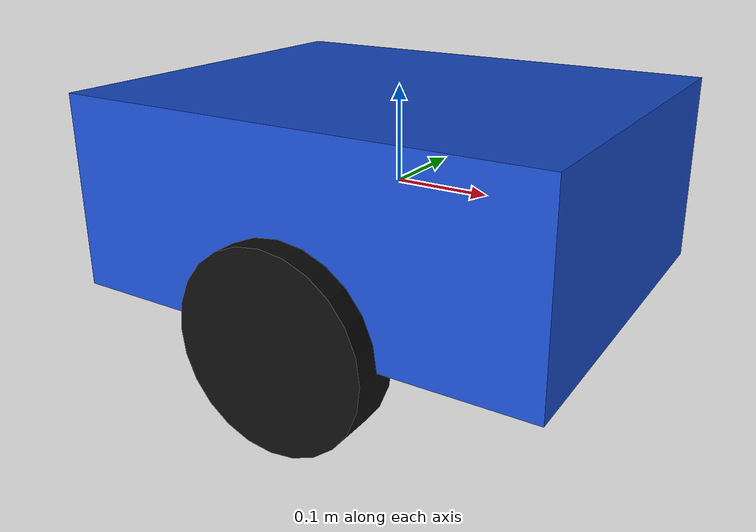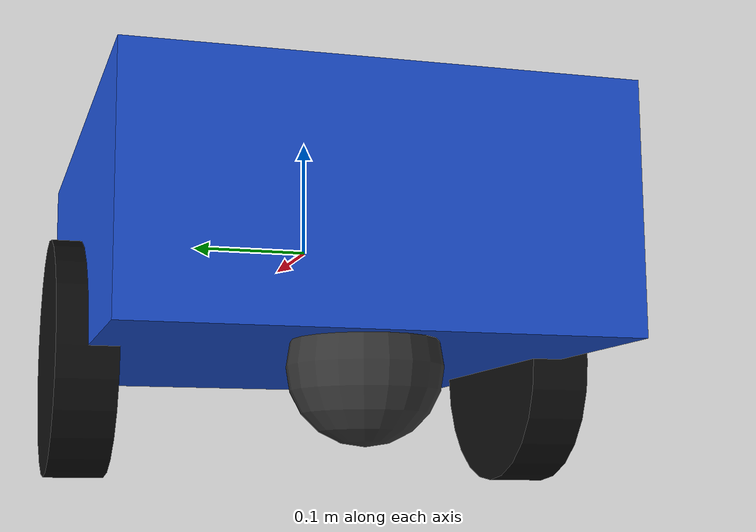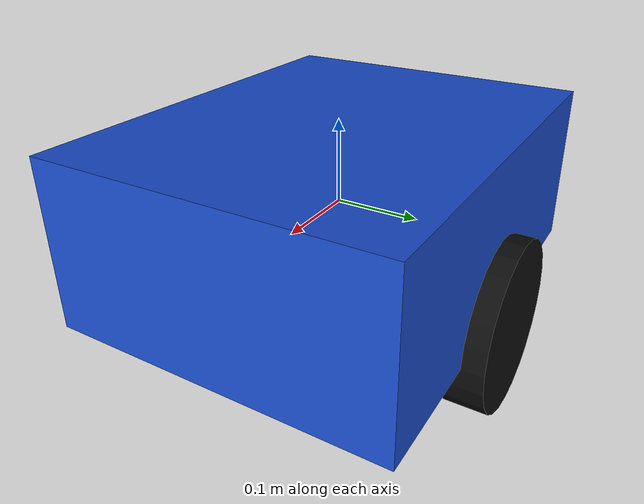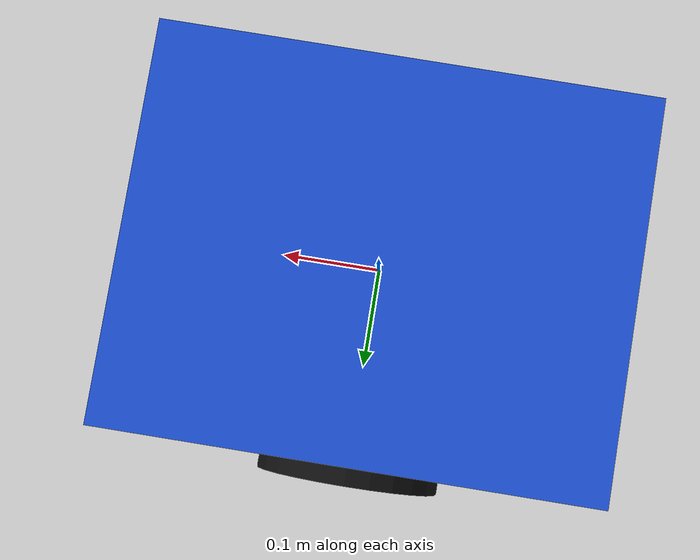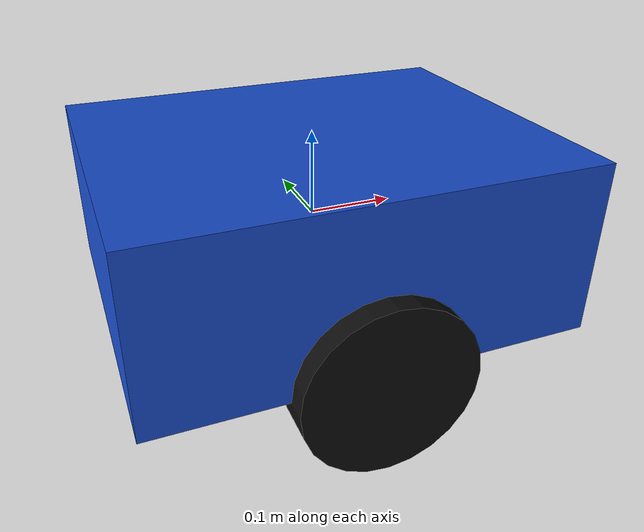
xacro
<?xml version="1.0"?>
<robot xmlns:xacro="http://www.ros.org/wiki/xacro"
       name="color_goal_robot">

  <xacro:property name="base_length" value="0.5"/>
  <xacro:property name="base_width" value="0.4"/>
  <xacro:property name="base_height" value="0.2"/>

  <xacro:property name="wheel_radius" value="0.1"/>
  <xacro:property name="wheel_width" value="0.05"/>
  <xacro:property name="wheel_separation" value="0.4"/>

  <link name="base_link">
    <visual>
      <origin xyz="0 0 0"/>
      <geometry>
        <box size="${base_length} ${base_width} ${base_height}"/>
      </geometry>
      <material name="blue_material">
        <color rgba="0.1 0.3 0.8 1.0"/>
      </material>
    </visual>

    <collision>
      <origin xyz="0 0 0"/>
      <geometry>
        <box size="${base_length} ${base_width} ${base_height}"/>
      </geometry>
    </collision>

    <inertial>
      <mass value="5.0"/>
      <origin xyz="0 0 0"/>
      <inertia
        ixx="0.1" ixy="0.0" ixz="0.0"
        iyy="0.1" iyz="0.0"
        izz="0.1"/>
    </inertial>
  </link>

  <link name="left_wheel_link">
    <visual>
      <origin xyz="0 0 0" rpy="${pi/2} 0 0"/>
      <geometry>
        <cylinder
          radius="${wheel_radius}"
          length="${wheel_width}"/>
      </geometry>
      <material name="black_material">
        <color rgba="0.05 0.05 0.05 1.0"/>
      </material>
    </visual>

    <collision>
      <origin xyz="0 0 0" rpy="${pi/2} 0 0"/>
      <geometry>
        <cylinder
          radius="${wheel_radius}"
          length="${wheel_width}"/>
      </geometry>
    </collision>

    <inertial>
      <mass value="0.5"/>
      <origin xyz="0 0 0"/>
      <inertia
        ixx="0.01" ixy="0.0" ixz="0.0"
        iyy="0.01" iyz="0.0"
        izz="0.01"/>
    </inertial>
  </link>

  <link name="right_wheel_link">
    <visual>
      <origin xyz="0 0 0" rpy="${pi/2} 0 0"/>
      <geometry>
        <cylinder
          radius="${wheel_radius}"
          length="${wheel_width}"/>
      </geometry>
      <material name="black_material">
        <color rgba="0.05 0.05 0.05 1.0"/>
      </material>
    </visual>

    <collision>
      <origin xyz="0 0 0" rpy="${pi/2} 0 0"/>
      <geometry>
        <cylinder
          radius="${wheel_radius}"
          length="${wheel_width}"/>
      </geometry>
    </collision>

    <inertial>
      <mass value="0.5"/>
      <origin xyz="0 0 0"/>
      <inertia
        ixx="0.01" ixy="0.0" ixz="0.0"
        iyy="0.01" iyz="0.0"
        izz="0.01"/>
    </inertial>
  </link>

  <joint name="left_wheel_joint"
         type="continuous">

    <parent link="base_link"/>
    <child link="left_wheel_link"/>

    <origin
      xyz="0 ${wheel_separation / 2} -0.1"
      rpy="0 0 0"/>

    <axis xyz="0 1 0"/>
  </joint>

  <joint name="right_wheel_joint"
         type="continuous">

    <parent link="base_link"/>
    <child link="right_wheel_link"/>

    <origin
      xyz="0 ${-wheel_separation / 2} -0.1"
      rpy="0 0 0"/>

    <axis xyz="0 1 0"/>
  </joint>

  <link name="caster_link">
    <visual>
      <geometry>
        <sphere radius="0.06"/>
      </geometry>
      <material name="caster_material">
        <color rgba="0.2 0.2 0.2 1.0"/>
      </material>
    </visual>

    <collision>
      <geometry>
        <sphere radius="0.06"/>
      </geometry>
    </collision>

    <inertial>
      <mass value="0.2"/>
      <origin xyz="0 0 0"/>
      <inertia
        ixx="0.001" ixy="0.0" ixz="0.0"
        iyy="0.001" iyz="0.0"
        izz="0.001"/>
    </inertial>
  </link>

  <joint name="caster_joint"
         type="fixed">
    <parent link="base_link"/>
    <child link="caster_link"/>
    <origin xyz="-0.18 0 -0.12"/>
  </joint>

 <gazebo>
    <plugin name="diff_drive"
            filename="libgazebo_ros_diff_drive.so">

      <ros>
        <namespace>/</namespace>
      </ros>

      <update_rate>50</update_rate>

      <left_joint>left_wheel_joint</left_joint>
      <right_joint>right_wheel_joint</right_joint>

      <wheel_separation>${wheel_separation}</wheel_separation>
      <wheel_diameter>${2 * wheel_radius}</wheel_diameter>

      <max_wheel_torque>20</max_wheel_torque>
      <max_wheel_acceleration>10</max_wheel_acceleration>

      <command_topic>cmd_vel</command_topic>
      <odometry_topic>odom</odometry_topic>

      <odometry_frame>odom</odometry_frame>
      <robot_base_frame>base_link</robot_base_frame>

      <publish_odom>true</publish_odom>
      <publish_odom_tf>true</publish_odom_tf>
      <publish_wheel_tf>true</publish_wheel_tf>
    </plugin>
  </gazebo>

</robot>
